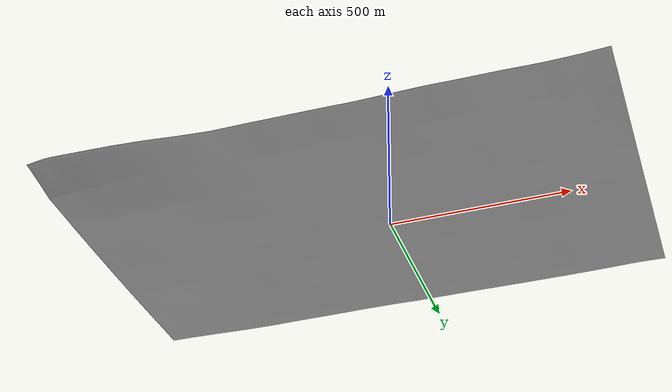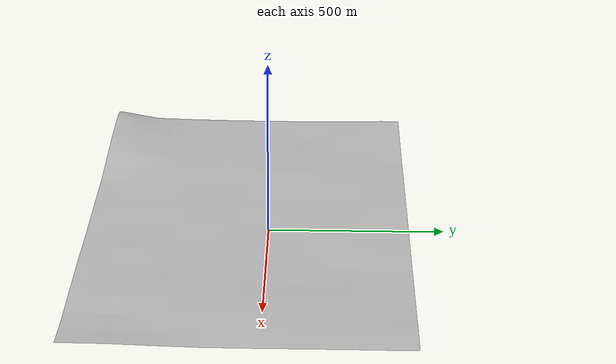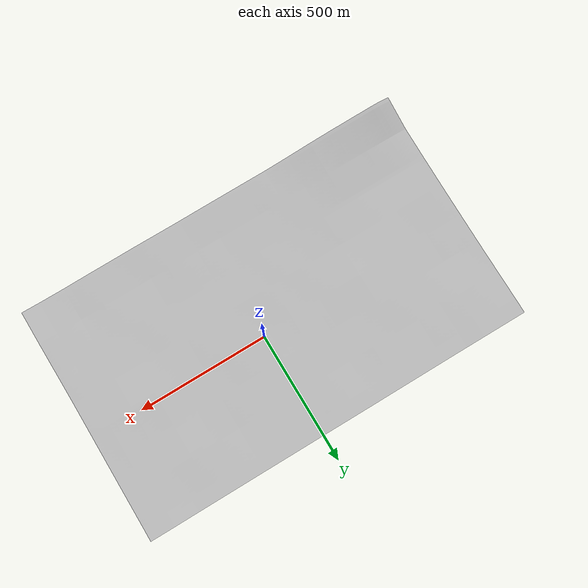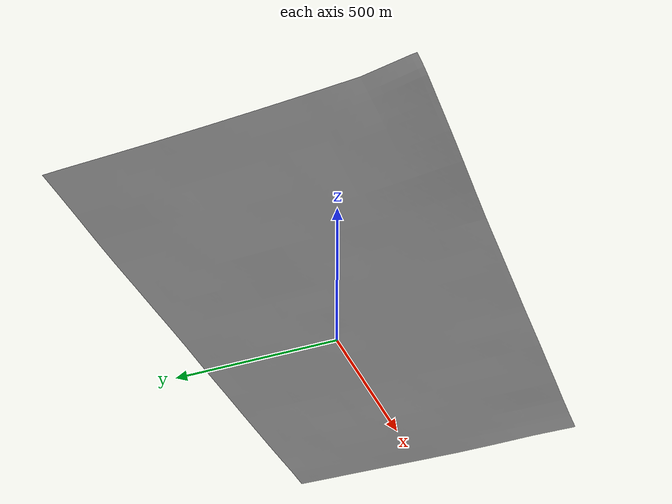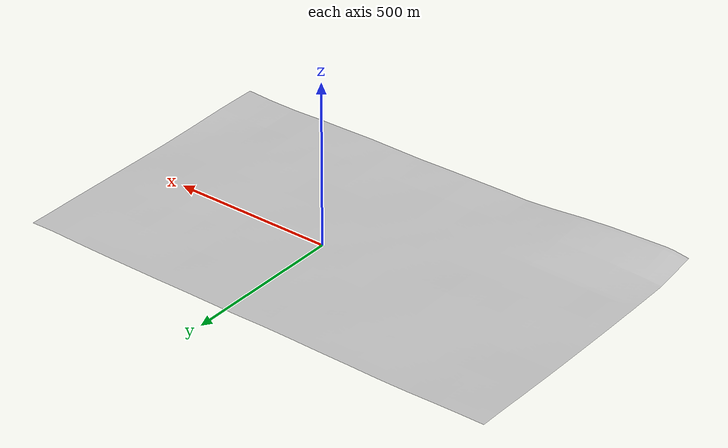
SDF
<?xml version="1.0"?>
<sdf version='1.10'>
  <model name='soylu'>
    <link name='soylu_link'>
      <visual name='visual'>
        <geometry>
          <mesh>
            <uri>package://fpv_drone/meshes/soylu/soylu.dae</uri>
          </mesh>
        </geometry>
      </visual>
      <collision name='collision'>
        <geometry>
          <mesh>
            <uri>package://fpv_drone/meshes/soylu/soylu.dae</uri>
          </mesh>
        </geometry>
      </collision>
      <pose>0 0 0 0 0 0</pose>
      <inertial>
        <pose>0 0 0 0 0 0</pose>
        <mass>1</mass>
        <inertia>
          <ixx>1</ixx>
          <ixy>0</ixy>
          <ixz>0</ixz>
          <iyy>1</iyy>
          <iyz>0</iyz>
          <izz>1</izz>
        </inertia>
      </inertial>
      <enable_wind>false</enable_wind>
    </link>
    <pose>0 0 0 0 0 0</pose>
    <static>true</static>
    <self_collide>false</self_collide>
  </model>
</sdf>
